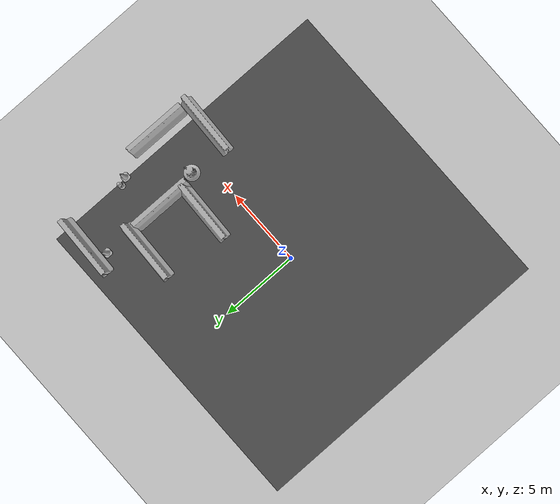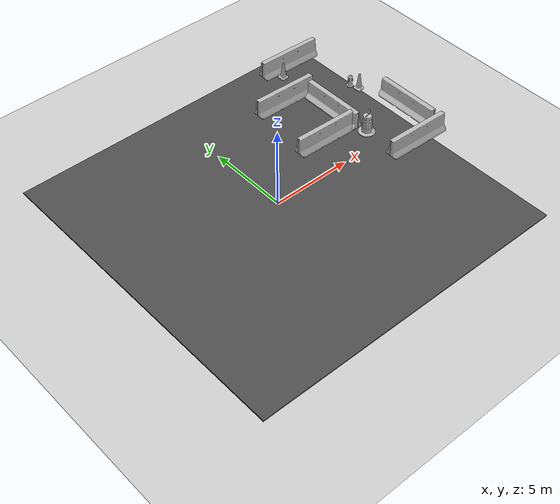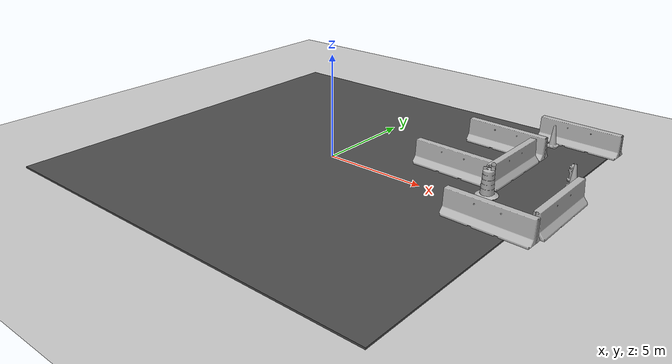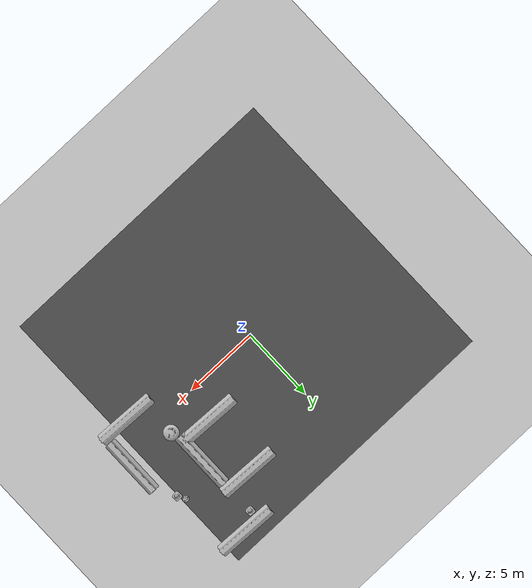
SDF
<sdf version="1.7">
 <world name="default">
  <model name="ground_plane">
   <static>1</static>
   <link name="link">
    <collision name="collision">
     <geometry><plane><normal>0 0 1</normal><size>100 100</size></plane></geometry>
     <surface><friction><ode><mu>100</mu><mu2>50</mu2></ode></friction></surface>
    </collision>
    <visual name="visual">
     <cast_shadows>0</cast_shadows>
     <geometry><plane><normal>0 0 1</normal><size>100 100</size></plane></geometry>
     <material>
      <script><uri>file://media/materials/scripts/gazebo.material</uri><name>Gazebo/Grey</name></script>
     </material>
    </visual>
    <velocity_decay><linear>0</linear><angular>0</angular></velocity_decay>
   </link>
  </model>
  <model name="fire_hydrant">
   <static>1</static>
   <link name="link">
    <collision name="collision">
     <geometry><mesh><uri>model://fire_hydrant/meshes/fire_hydrant.dae</uri></mesh></geometry>
    </collision>
    <visual name="visual">
     <geometry><mesh><uri>model://fire_hydrant/meshes/fire_hydrant.dae</uri></mesh></geometry>
    </visual>
    <velocity_decay><linear>0</linear><angular>0</angular></velocity_decay>
   </link>
   <pose>9.89964 4.68896 0 0 -0 0</pose>
  </model>
  <model name="Construction Cone">
   <link name="link">
    <collision name="collision">
     <geometry>
      <mesh><scale>10 10 10</scale><uri>model://construction_cone/meshes/construction_cone.dae</uri></mesh>
     </geometry>
    </collision>
    <visual name="visual">
     <geometry>
      <mesh><scale>10 10 10</scale><uri>model://construction_cone/meshes/construction_cone.dae</uri></mesh>
     </geometry>
    </visual>
    <velocity_decay><linear>0</linear><angular>0</angular></velocity_decay>
    <inertial>
     <inertia><ixx>1</ixx><ixy>0</ixy><ixz>0</ixz><iyy>1</iyy><iyz>0</iyz><izz>1</izz></inertia>
     <mass>1</mass>
    </inertial>
   </link>
   <pose>7.48054 7.99505 0.04912 0 -0 1.4e-05</pose>
   <static>0</static>
  </model>
  <model name="Construction Barrel">
   <link name="link">
    <inertial>
     <pose>0 0 0.4 0 -0 0</pose>
     <mass>500</mass>
     <inertia><ixx>51.2096</ixx><iyy>51.2096</iyy><izz>25</izz><ixy>0</ixy><ixz>0</ixz><iyz>0</iyz></inertia>
    </inertial>
    <collision name="collision">
     <geometry><mesh><uri>model://construction_barrel/meshes/construction_barrel.dae</uri></mesh></geometry>
    </collision>
    <visual name="visual">
     <geometry><mesh><uri>model://construction_barrel/meshes/construction_barrel.dae</uri></mesh></geometry>
    </visual>
    <velocity_decay><linear>0</linear><angular>0</angular></velocity_decay>
   </link>
   <pose>7.75089 1.05558 0.049887 0.000383 0.000221 0.326985</pose>
   <static>0</static>
  </model>
  <model name="asphalt_plane">
   <static>1</static>
   <link name="link">
    <collision name="collision"><geometry><box><size>20 20 0.1</size></box></geometry></collision>
    <visual name="visual">
     <cast_shadows>0</cast_shadows>
     <geometry><box><size>20 20 0.1</size></box></geometry>
     <material>
      <script>
       <uri>model://asphalt_plane/materials/scripts</uri>
       <uri>model://asphalt_plane/materials/textures</uri>
       <name>vrc/asphalt</name>
      </script>
     </material>
    </visual>
    <velocity_decay><linear>0</linear><angular>0</angular></velocity_decay>
   </link>
   <pose>0.125329 -0.243752 0 0 -0 0</pose>
  </model>
  <model name="Construction Cone_1">
   <link name="link">
    <collision name="collision">
     <geometry>
      <mesh><scale>10 10 10</scale><uri>model://construction_cone/meshes/construction_cone.dae</uri></mesh>
     </geometry>
    </collision>
    <visual name="visual">
     <geometry>
      <mesh><scale>10 10 10</scale><uri>model://construction_cone/meshes/construction_cone.dae</uri></mesh>
     </geometry>
    </visual>
    <velocity_decay><linear>0</linear><angular>0</angular></velocity_decay>
    <inertial>
     <inertia><ixx>1</ixx><ixy>0</ixy><ixz>0</ixz><iyy>1</iyy><iyz>0</iyz><izz>1</izz></inertia>
     <mass>1</mass>
    </inertial>
   </link>
   <pose>10.1787 4.20144 0.04915 -5.2e-05 -5e-05 6e-06</pose>
   <static>0</static>
  </model>
  <model name="jersey_barrier_15_clone_clone_0">
   <static>1</static>
   <link name="link">
    <visual name="visual">
     <geometry><mesh><uri>model://jersey_barrier/meshes/jersey_barrier.dae</uri></mesh></geometry>
    </visual>
    <collision name="upright">
     <pose>0 0 0.5715 0 -0 0</pose>
     <geometry><box><size>4.06542 0.3063 1.143</size></box></geometry>
    </collision>
    <collision name="base">
     <pose>0 0 0.032258 0 -0 0</pose>
     <geometry><box><size>4.06542 0.8107 0.064516</size></box></geometry>
    </collision>
    <collision name="base2">
     <pose>0 0 0.1 0 -0 0</pose>
     <geometry><box><size>4.06542 0.65 0.1</size></box></geometry>
    </collision>
    <collision name="base3">
     <pose>0 0 0.2 0 -0 0</pose>
     <geometry><box><size>4.06542 0.5 0.1</size></box></geometry>
    </collision>
    <collision name="left-angle">
     <pose>0 -0.224 0.2401 0.9 -0 0</pose>
     <geometry><box><size>4.06542 0.5 0.064516</size></box></geometry>
    </collision>
    <collision name="right-angle">
     <pose>0 0.224 0.2401 -0.9 0 0</pose>
     <geometry><box><size>4.06542 0.5 0.064516</size></box></geometry>
    </collision>
    <velocity_decay><linear>0</linear><angular>0</angular></velocity_decay>
   </link>
   <pose>5.46792 2.07217 0.055108 0 -0 3.10817</pose>
  </model>
  <model name="jersey_barrier_15_clone_clone_clone">
   <static>1</static>
   <link name="link">
    <visual name="visual">
     <geometry><mesh><uri>model://jersey_barrier/meshes/jersey_barrier.dae</uri></mesh></geometry>
    </visual>
    <collision name="upright">
     <pose>0 0 0.5715 0 -0 0</pose>
     <geometry><box><size>4.06542 0.3063 1.143</size></box></geometry>
    </collision>
    <collision name="base">
     <pose>0 0 0.032258 0 -0 0</pose>
     <geometry><box><size>4.06542 0.8107 0.064516</size></box></geometry>
    </collision>
    <collision name="base2">
     <pose>0 0 0.1 0 -0 0</pose>
     <geometry><box><size>4.06542 0.65 0.1</size></box></geometry>
    </collision>
    <collision name="base3">
     <pose>0 0 0.2 0 -0 0</pose>
     <geometry><box><size>4.06542 0.5 0.1</size></box></geometry>
    </collision>
    <collision name="left-angle">
     <pose>0 -0.224 0.2401 0.9 -0 0</pose>
     <geometry><box><size>4.06542 0.5 0.064516</size></box></geometry>
    </collision>
    <collision name="right-angle">
     <pose>0 0.224 0.2401 -0.9 0 0</pose>
     <geometry><box><size>4.06542 0.5 0.064516</size></box></geometry>
    </collision>
    <velocity_decay><linear>0</linear><angular>0</angular></velocity_decay>
   </link>
   <pose>9.22173 -1.46863 0.055108 0 -0 3.10817</pose>
  </model>
  <model name="jersey_barrier_15_clone_clone_clone_1">
   <static>1</static>
   <link name="link">
    <visual name="visual">
     <geometry><mesh><uri>model://jersey_barrier/meshes/jersey_barrier.dae</uri></mesh></geometry>
    </visual>
    <collision name="upright">
     <pose>0 0 0.5715 0 -0 0</pose>
     <geometry><box><size>4.06542 0.3063 1.143</size></box></geometry>
    </collision>
    <collision name="base">
     <pose>0 0 0.032258 0 -0 0</pose>
     <geometry><box><size>4.06542 0.8107 0.064516</size></box></geometry>
    </collision>
    <collision name="base2">
     <pose>0 0 0.1 0 -0 0</pose>
     <geometry><box><size>4.06542 0.65 0.1</size></box></geometry>
    </collision>
    <collision name="base3">
     <pose>0 0 0.2 0 -0 0</pose>
     <geometry><box><size>4.06542 0.5 0.1</size></box></geometry>
    </collision>
    <collision name="left-angle">
     <pose>0 -0.224 0.2401 0.9 -0 0</pose>
     <geometry><box><size>4.06542 0.5 0.064516</size></box></geometry>
    </collision>
    <collision name="right-angle">
     <pose>0 0.224 0.2401 -0.9 0 0</pose>
     <geometry><box><size>4.06542 0.5 0.064516</size></box></geometry>
    </collision>
    <velocity_decay><linear>0</linear><angular>0</angular></velocity_decay>
   </link>
   <pose>10.9678 0.944279 0.055108 0 -0 -1.57345</pose>
  </model>
  <model name="jersey_barrier_15_clone_clone_clone_1_clone">
   <static>1</static>
   <link name="link">
    <visual name="visual">
     <geometry><mesh><uri>model://jersey_barrier/meshes/jersey_barrier.dae</uri></mesh></geometry>
    </visual>
    <collision name="upright">
     <pose>0 0 0.5715 0 -0 0</pose>
     <geometry><box><size>4.06542 0.3063 1.143</size></box></geometry>
    </collision>
    <collision name="base">
     <pose>0 0 0.032258 0 -0 0</pose>
     <geometry><box><size>4.06542 0.8107 0.064516</size></box></geometry>
    </collision>
    <collision name="base2">
     <pose>0 0 0.1 0 -0 0</pose>
     <geometry><box><size>4.06542 0.65 0.1</size></box></geometry>
    </collision>
    <collision name="base3">
     <pose>0 0 0.2 0 -0 0</pose>
     <geometry><box><size>4.06542 0.5 0.1</size></box></geometry>
    </collision>
    <collision name="left-angle">
     <pose>0 -0.224 0.2401 0.9 -0 0</pose>
     <geometry><box><size>4.06542 0.5 0.064516</size></box></geometry>
    </collision>
    <collision name="right-angle">
     <pose>0 0.224 0.2401 -0.9 0 0</pose>
     <geometry><box><size>4.06542 0.5 0.064516</size></box></geometry>
    </collision>
    <velocity_decay><linear>0</linear><angular>0</angular></velocity_decay>
   </link>
   <pose>7.50403 3.61386 0.055108 0 0 -1.57345</pose>
  </model>
  <model name="jersey_barrier_15_clone_clone_clone_clone">
   <static>1</static>
   <link name="link">
    <visual name="visual">
     <geometry><mesh><uri>model://jersey_barrier/meshes/jersey_barrier.dae</uri></mesh></geometry>
    </visual>
    <collision name="upright">
     <pose>0 0 0.5715 0 -0 0</pose>
     <geometry><box><size>4.06542 0.3063 1.143</size></box></geometry>
    </collision>
    <collision name="base">
     <pose>0 0 0.032258 0 -0 0</pose>
     <geometry><box><size>4.06542 0.8107 0.064516</size></box></geometry>
    </collision>
    <collision name="base2">
     <pose>0 0 0.1 0 -0 0</pose>
     <geometry><box><size>4.06542 0.65 0.1</size></box></geometry>
    </collision>
    <collision name="base3">
     <pose>0 0 0.2 0 -0 0</pose>
     <geometry><box><size>4.06542 0.5 0.1</size></box></geometry>
    </collision>
    <collision name="left-angle">
     <pose>0 -0.224 0.2401 0.9 -0 0</pose>
     <geometry><box><size>4.06542 0.5 0.064516</size></box></geometry>
    </collision>
    <collision name="right-angle">
     <pose>0 0.224 0.2401 -0.9 0 0</pose>
     <geometry><box><size>4.06542 0.5 0.064516</size></box></geometry>
    </collision>
    <velocity_decay><linear>0</linear><angular>0</angular></velocity_decay>
   </link>
   <pose>5.92695 6.12031 0.055108 0 -0 3.10817</pose>
  </model>
  <model name="jersey_barrier_15_clone_clone_clone_clone_0">
   <static>1</static>
   <link name="link">
    <visual name="visual">
     <geometry><mesh><uri>model://jersey_barrier/meshes/jersey_barrier.dae</uri></mesh></geometry>
    </visual>
    <collision name="upright">
     <pose>0 0 0.5715 0 -0 0</pose>
     <geometry><box><size>4.06542 0.3063 1.143</size></box></geometry>
    </collision>
    <collision name="base">
     <pose>0 0 0.032258 0 -0 0</pose>
     <geometry><box><size>4.06542 0.8107 0.064516</size></box></geometry>
    </collision>
    <collision name="base2">
     <pose>0 0 0.1 0 -0 0</pose>
     <geometry><box><size>4.06542 0.65 0.1</size></box></geometry>
    </collision>
    <collision name="base3">
     <pose>0 0 0.2 0 -0 0</pose>
     <geometry><box><size>4.06542 0.5 0.1</size></box></geometry>
    </collision>
    <collision name="left-angle">
     <pose>0 -0.224 0.2401 0.9 -0 0</pose>
     <geometry><box><size>4.06542 0.5 0.064516</size></box></geometry>
    </collision>
    <collision name="right-angle">
     <pose>0 0.224 0.2401 -0.9 0 0</pose>
     <geometry><box><size>4.06542 0.5 0.064516</size></box></geometry>
    </collision>
    <velocity_decay><linear>0</linear><angular>0</angular></velocity_decay>
   </link>
   <pose>8.50474 8.67286 0.055108 0 -0 3.10817</pose>
  </model>
 </world>
</sdf>
